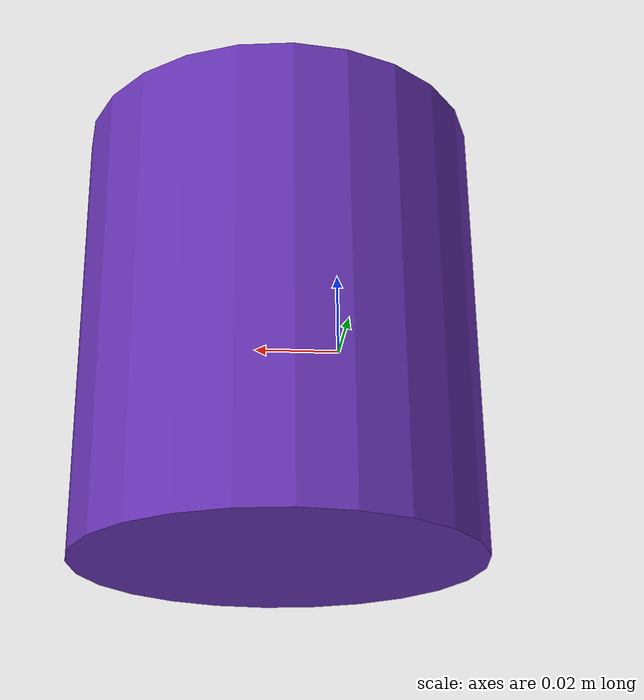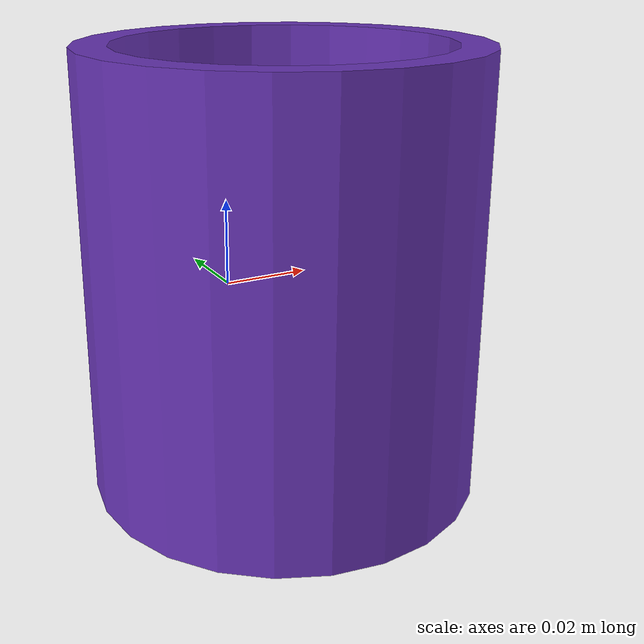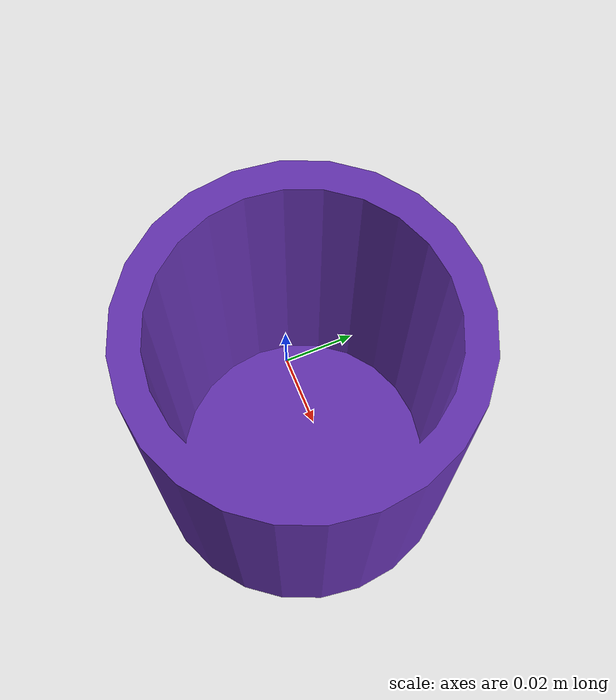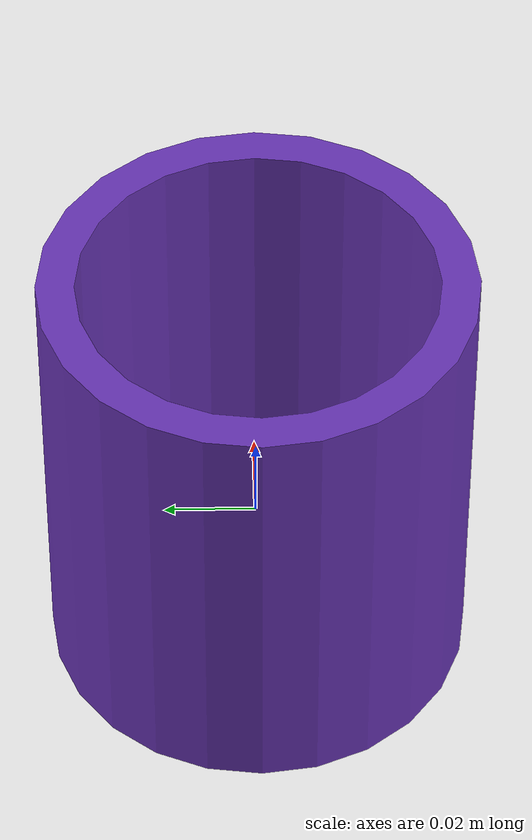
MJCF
<mujoco model="top_watertight_tiny">
  <default>
    <default group="2" type="mesh" contype="0" conaffinity="0">
      <geom group="2" type="mesh" contype="0" conaffinity="0"/>
    </default>
    <default group="3" type="mesh">
      <geom group="3" type="mesh"/>
    </default>
  </default>
  <asset>
    <mesh file="top_watertight_tiny.obj"/>
    <mesh file="top_watertight_tiny_collision_0.obj"/>
    <mesh file="top_watertight_tiny_collision_1.obj"/>
    <mesh file="top_watertight_tiny_collision_2.obj"/>
    <mesh file="top_watertight_tiny_collision_3.obj"/>
    <mesh file="top_watertight_tiny_collision_4.obj"/>
    <mesh file="top_watertight_tiny_collision_5.obj"/>
    <mesh file="top_watertight_tiny_collision_6.obj"/>
    <mesh file="top_watertight_tiny_collision_7.obj"/>
    <mesh file="top_watertight_tiny_collision_8.obj"/>
    <mesh file="top_watertight_tiny_collision_9.obj"/>
    <mesh file="top_watertight_tiny_collision_10.obj"/>
    <mesh file="top_watertight_tiny_collision_11.obj"/>
    <mesh file="top_watertight_tiny_collision_12.obj"/>
    <mesh file="top_watertight_tiny_collision_13.obj"/>
    <mesh file="top_watertight_tiny_collision_14.obj"/>
    <mesh file="top_watertight_tiny_collision_15.obj"/>
    <mesh file="top_watertight_tiny_collision_16.obj"/>
    <mesh file="top_watertight_tiny_collision_17.obj"/>
    <mesh file="top_watertight_tiny_collision_18.obj"/>
    <mesh file="top_watertight_tiny_collision_19.obj"/>
    <mesh file="top_watertight_tiny_collision_20.obj"/>
    <mesh file="top_watertight_tiny_collision_21.obj"/>
    <mesh file="top_watertight_tiny_collision_22.obj"/>
    <mesh file="top_watertight_tiny_collision_23.obj"/>
    <mesh file="top_watertight_tiny_collision_24.obj"/>
  </asset>
  <worldbody>
    <body name="top_watertight_tiny">
      <freejoint/>
      <geom mesh="top_watertight_tiny" group="2" type="mesh" rgba="0.4 0.2 0.7 1" contype="0" conaffinity="0"/>
      <geom mesh="top_watertight_tiny_collision_0" rgba="0.8224263125816443 0.9517639492198736 0.5453538352742968 1" group="3" type="mesh"/>
      <geom mesh="top_watertight_tiny_collision_1" rgba="0.7494781317256952 0.7592277166603743 0.37468605314924497 1" group="3" type="mesh"/>
      <geom mesh="top_watertight_tiny_collision_2" rgba="0.9387583375955585 0.26762709914260596 0.21134507920314738 1" group="3" type="mesh"/>
      <geom mesh="top_watertight_tiny_collision_3" rgba="0.4357200522811545 0.4092829010428962 0.2921918026887561 1" group="3" type="mesh"/>
      <geom mesh="top_watertight_tiny_collision_4" rgba="0.4833379353040814 0.4602743971612051 0.7596064443123128 1" group="3" type="mesh"/>
      <geom mesh="top_watertight_tiny_collision_5" rgba="0.5556578873843675 0.5084667005531425 0.5650352314338049 1" group="3" type="mesh"/>
      <geom mesh="top_watertight_tiny_collision_6" rgba="0.3422548131658415 0.6767123980549883 0.06919372380824529 1" group="3" type="mesh"/>
      <geom mesh="top_watertight_tiny_collision_7" rgba="0.6005874045435983 0.4834681999408945 0.24401875419311647 1" group="3" type="mesh"/>
      <geom mesh="top_watertight_tiny_collision_8" rgba="0.10738541336583762 0.7035260289150987 0.6790710028565264 1" group="3" type="mesh"/>
      <geom mesh="top_watertight_tiny_collision_9" rgba="0.9967229298358151 0.6934513254418134 0.7212225286566796 1" group="3" type="mesh"/>
      <geom mesh="top_watertight_tiny_collision_10" rgba="0.12382906496768165 0.12732364197019663 0.8027368992584083 1" group="3" type="mesh"/>
      <geom mesh="top_watertight_tiny_collision_11" rgba="0.38770535955129526 0.4431748083123819 0.34118047975489907 1" group="3" type="mesh"/>
      <geom mesh="top_watertight_tiny_collision_12" rgba="0.29289179029668455 0.9177775218882368 0.4106549371463024 1" group="3" type="mesh"/>
      <geom mesh="top_watertight_tiny_collision_13" rgba="0.13665261952698227 0.7325897658644172 0.8082358982958415 1" group="3" type="mesh"/>
      <geom mesh="top_watertight_tiny_collision_14" rgba="0.6916383520075973 0.5014788981346958 0.015807813511008018 1" group="3" type="mesh"/>
      <geom mesh="top_watertight_tiny_collision_15" rgba="0.904202774832396 0.9405345521617112 0.2763893759062106 1" group="3" type="mesh"/>
      <geom mesh="top_watertight_tiny_collision_16" rgba="0.24665750855267976 0.049001693198439056 0.5401057863560614 1" group="3" type="mesh"/>
      <geom mesh="top_watertight_tiny_collision_17" rgba="0.002584612124159613 0.9003884845467695 0.8140831374629992 1" group="3" type="mesh"/>
      <geom mesh="top_watertight_tiny_collision_18" rgba="0.23088961557021714 0.8935479171160995 0.23325444749021296 1" group="3" type="mesh"/>
      <geom mesh="top_watertight_tiny_collision_19" rgba="0.044018688714457244 0.23158070447834211 0.5426480030687494 1" group="3" type="mesh"/>
      <geom mesh="top_watertight_tiny_collision_20" rgba="0.011216981076395682 0.3583801870914741 0.10053204573322683 1" group="3" type="mesh"/>
      <geom mesh="top_watertight_tiny_collision_21" rgba="0.6439434104092729 0.257531213901546 0.34481617108674467 1" group="3" type="mesh"/>
      <geom mesh="top_watertight_tiny_collision_22" rgba="0.23565192502108956 0.26700659401372695 0.3512944255627214 1" group="3" type="mesh"/>
      <geom mesh="top_watertight_tiny_collision_23" rgba="0.8982067567604414 0.43983533385297424 0.49225682516026037 1" group="3" type="mesh"/>
      <geom mesh="top_watertight_tiny_collision_24" rgba="0.13143315776205167 0.7018019747998216 0.018769357110711704 1" group="3" type="mesh"/>
    </body>
  </worldbody>
</mujoco>
